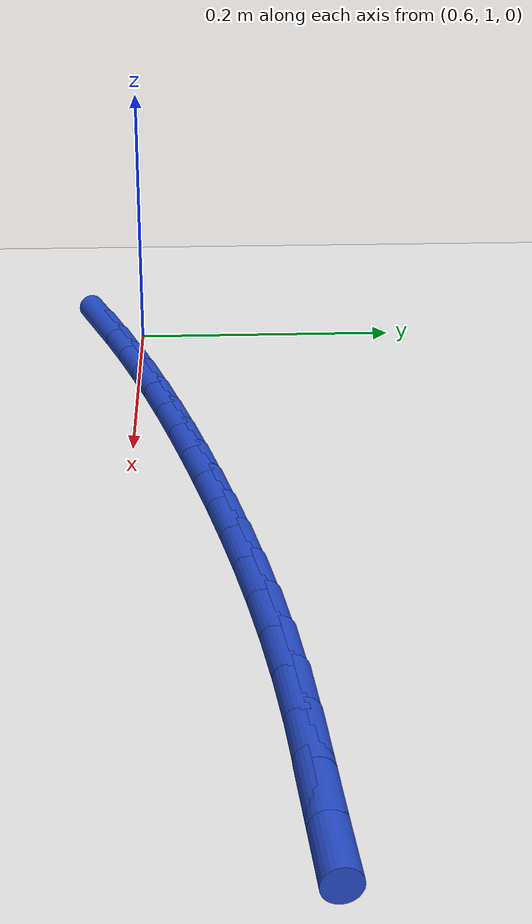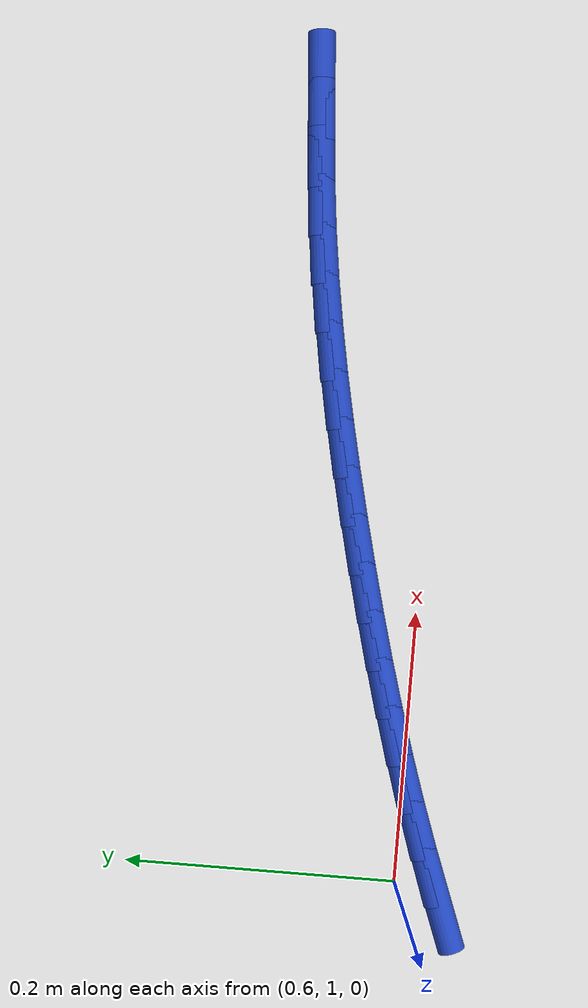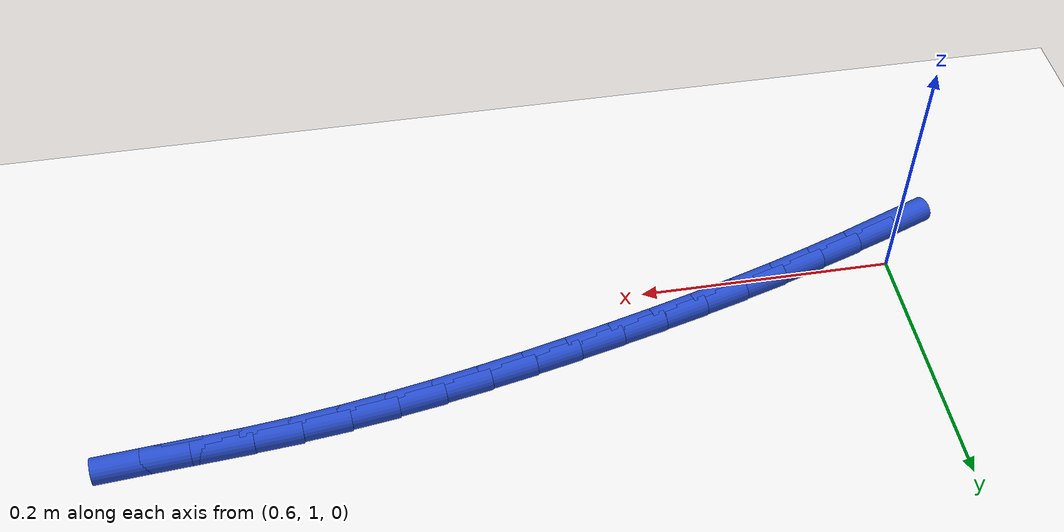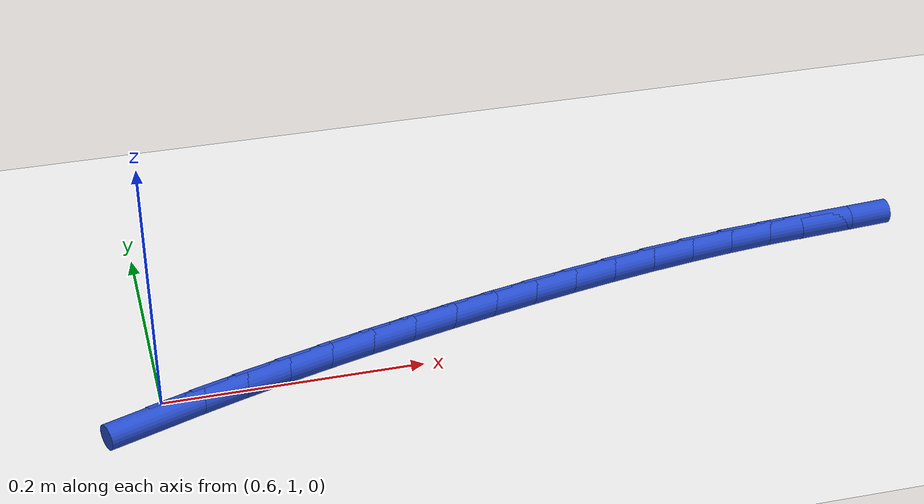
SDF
<sdf version="1.6">
 <world name="default">
  <model name="ground_plane">
   <static>1</static>
   <link name="link">
    <collision name="collision">
     <geometry><plane><normal>0 0 1</normal><size>100 100</size></plane></geometry>
     <surface><friction><ode><mu>100</mu><mu2>50</mu2></ode></friction></surface>
    </collision>
    <visual name="visual">
     <cast_shadows>0</cast_shadows>
     <geometry><plane><normal>0 0 1</normal><size>100 100</size></plane></geometry>
     <material>
      <script><uri>file://media/materials/scripts/gazebo.material</uri><name>Gazebo/WhiteGlow</name></script>
     </material>
    </visual>
   </link>
  </model>
  <model name="line">
   <link name="link_34">
    <pose>0.5934188185372113 0.9690207381355841 0.01 0 1.57 0.35867715312286735</pose>
    <collision name="collision">
     <geometry><cylinder><radius>0.01</radius><length>0.08</length></cylinder></geometry>
    </collision>
    <visual name="visual">
     <material>
      <script><name>Gazebo/Blue</name><uri>file://media/materials/scripts/gazebo.material</uri></script>
     </material>
     <geometry><cylinder><radius>0.01</radius><length>0.08</length></cylinder></geometry>
    </visual>
   </link>
   <link name="link_35">
    <pose>0.6268365475781638 0.9815488220487255 0.01 0 1.57 0.33769945399846885</pose>
    <collision name="collision">
     <geometry><cylinder><radius>0.01</radius><length>0.08</length></cylinder></geometry>
    </collision>
    <visual name="visual">
     <material>
      <script><name>Gazebo/Blue</name><uri>file://media/materials/scripts/gazebo.material</uri></script>
     </material>
     <geometry><cylinder><radius>0.01</radius><length>0.08</length></cylinder></geometry>
    </visual>
   </link>
   <link name="link_36">
    <pose>0.6604122335720984 0.9933389431682658 0.01 0 1.57 0.3181386986248441</pose>
    <collision name="collision">
     <geometry><cylinder><radius>0.01</radius><length>0.08</length></cylinder></geometry>
    </collision>
    <visual name="visual">
     <material>
      <script><name>Gazebo/Blue</name><uri>file://media/materials/scripts/gazebo.material</uri></script>
     </material>
     <geometry><cylinder><radius>0.01</radius><length>0.08</length></cylinder></geometry>
    </visual>
   </link>
   <link name="link_37">
    <pose>0.6941486769436354 1.0044491963256963 0.01 0 1.57 0.3000533269703848</pose>
    <collision name="collision">
     <geometry><cylinder><radius>0.01</radius><length>0.08</length></cylinder></geometry>
    </collision>
    <visual name="visual">
     <material>
      <script><name>Gazebo/Blue</name><uri>file://media/materials/scripts/gazebo.material</uri></script>
     </material>
     <geometry><cylinder><radius>0.01</radius><length>0.08</length></cylinder></geometry>
    </visual>
   </link>
   <link name="link_38">
    <pose>0.7280486781173943 1.0149376763525089 0.01 0 1.57 0.2834905531490338</pose>
    <collision name="collision">
     <geometry><cylinder><radius>0.01</radius><length>0.08</length></cylinder></geometry>
    </collision>
    <visual name="visual">
     <material>
      <script><name>Gazebo/Blue</name><uri>file://media/materials/scripts/gazebo.material</uri></script>
     </material>
     <geometry><cylinder><radius>0.01</radius><length>0.08</length></cylinder></geometry>
    </visual>
   </link>
   <link name="link_39">
    <pose>0.7621150375179948 1.0248624780801956 0.01 0 1.57 0.26848707169760744</pose>
    <collision name="collision">
     <geometry><cylinder><radius>0.01</radius><length>0.08</length></cylinder></geometry>
    </collision>
    <visual name="visual">
     <material>
      <script><name>Gazebo/Blue</name><uri>file://media/materials/scripts/gazebo.material</uri></script>
     </material>
     <geometry><cylinder><radius>0.01</radius><length>0.08</length></cylinder></geometry>
    </visual>
   </link>
   <link name="link_40">
    <pose>0.7963505555700576 1.034281696340249 0.01 0 1.57 0.2550698951712809</pose>
    <collision name="collision">
     <geometry><cylinder><radius>0.01</radius><length>0.08</length></cylinder></geometry>
    </collision>
    <visual name="visual">
     <material>
      <script><name>Gazebo/Blue</name><uri>file://media/materials/scripts/gazebo.material</uri></script>
     </material>
     <geometry><cylinder><radius>0.01</radius><length>0.08</length></cylinder></geometry>
    </visual>
   </link>
   <link name="link_41">
    <pose>0.8307580326982019 1.0432534259641604 0.01 0 1.57 0.2432552574607341</pose>
    <collision name="collision">
     <geometry><cylinder><radius>0.01</radius><length>0.08</length></cylinder></geometry>
    </collision>
    <visual name="visual">
     <material>
      <script><name>Gazebo/Blue</name><uri>file://media/materials/scripts/gazebo.material</uri></script>
     </material>
     <geometry><cylinder><radius>0.01</radius><length>0.08</length></cylinder></geometry>
    </visual>
   </link>
   <link name="link_42">
    <pose>0.8653402520343028 1.0518356838647942 0.01 0 1.57 0.23202307096497948</pose>
    <collision name="collision">
     <geometry><cylinder><radius>0.01</radius><length>0.08</length></cylinder></geometry>
    </collision>
    <visual name="visual">
     <material>
      <script><name>Gazebo/Blue</name><uri>file://media/materials/scripts/gazebo.material</uri></script>
     </material>
     <geometry><cylinder><radius>0.01</radius><length>0.08</length></cylinder></geometry>
    </visual>
   </link>
   <link name="link_43">
    <pose>0.9000911368951012 1.060046565899707 0.01 0 1.57 0.2186507471971308</pose>
    <collision name="collision">
     <geometry><cylinder><radius>0.01</radius><length>0.08</length></cylinder></geometry>
    </collision>
    <visual name="visual">
     <material>
      <script><name>Gazebo/Blue</name><uri>file://media/materials/scripts/gazebo.material</uri></script>
     </material>
     <geometry><cylinder><radius>0.01</radius><length>0.08</length></cylinder></geometry>
    </visual>
   </link>
   <link name="link_44">
    <pose>0.9349813316201964 1.0677992761967794 0.01 0 1.57 0.20265007443832417</pose>
    <collision name="collision">
     <geometry><cylinder><radius>0.01</radius><length>0.08</length></cylinder></geometry>
    </collision>
    <visual name="visual">
     <material>
      <script><name>Gazebo/Blue</name><uri>file://media/materials/scripts/gazebo.material</uri></script>
     </material>
     <geometry><cylinder><radius>0.01</radius><length>0.08</length></cylinder></geometry>
    </visual>
   </link>
   <link name="link_45">
    <pose>0.9699777030324707 1.0749899979357715 0.01 0 1.57 0.18395376565996616</pose>
    <collision name="collision">
     <geometry><cylinder><radius>0.01</radius><length>0.08</length></cylinder></geometry>
    </collision>
    <visual name="visual">
     <material>
      <script><name>Gazebo/Blue</name><uri>file://media/materials/scripts/gazebo.material</uri></script>
     </material>
     <geometry><cylinder><radius>0.01</radius><length>0.08</length></cylinder></geometry>
    </visual>
   </link>
   <link name="link_46">
    <pose>1.0050471179548073 1.0815149142964438 0.01 0 1.57 0.16247987473973194</pose>
    <collision name="collision">
     <geometry><cylinder><radius>0.01</radius><length>0.08</length></cylinder></geometry>
    </collision>
    <visual name="visual">
     <material>
      <script><name>Gazebo/Blue</name><uri>file://media/materials/scripts/gazebo.material</uri></script>
     </material>
     <geometry><cylinder><radius>0.01</radius><length>0.08</length></cylinder></geometry>
    </visual>
   </link>
   <link name="link_47">
    <pose>1.0401564432100892 1.0872702084585555 0.01 0 1.57 0.13813505867766</pose>
    <collision name="collision">
     <geometry><cylinder><radius>0.01</radius><length>0.08</length></cylinder></geometry>
    </collision>
    <visual name="visual">
     <material>
      <script><name>Gazebo/Blue</name><uri>file://media/materials/scripts/gazebo.material</uri></script>
     </material>
     <geometry><cylinder><radius>0.01</radius><length>0.08</length></cylinder></geometry>
    </visual>
   </link>
   <link name="link_48">
    <pose>1.075272545621199 1.0921520636018667 0.01 0 1.57 0.11081909394043994</pose>
    <collision name="collision">
     <geometry><cylinder><radius>0.01</radius><length>0.08</length></cylinder></geometry>
    </collision>
    <visual name="visual">
     <material>
      <script><name>Gazebo/Blue</name><uri>file://media/materials/scripts/gazebo.material</uri></script>
     </material>
     <geometry><cylinder><radius>0.01</radius><length>0.08</length></cylinder></geometry>
    </visual>
   </link>
   <link name="link_49">
    <pose>1.1103622927940897 1.096056674701157 0.01 0 1.57 0.08438259437875097</pose>
    <collision name="collision">
     <geometry><cylinder><radius>0.01</radius><length>0.08</length></cylinder></geometry>
    </collision>
    <visual name="visual">
     <material>
      <script><name>Gazebo/Blue</name><uri>file://media/materials/scripts/gazebo.material</uri></script>
     </material>
     <geometry><cylinder><radius>0.01</radius><length>0.08</length></cylinder></geometry>
    </visual>
   </link>
   <link name="link_50">
    <pose>1.1454018605543699 1.0990204421012482 0.01 0 1.57 0.07268358910765241</pose>
    <collision name="collision">
     <geometry><cylinder><radius>0.01</radius><length>0.08</length></cylinder></geometry>
    </collision>
    <visual name="visual">
     <material>
      <script><name>Gazebo/Blue</name><uri>file://media/materials/scripts/gazebo.material</uri></script>
     </material>
     <geometry><cylinder><radius>0.01</radius><length>0.08</length></cylinder></geometry>
    </visual>
   </link>
   <link name="link_51">
    <pose>1.1803998858705436 1.1015687131981093 0.01 0 1.57 0.07888852824627425</pose>
    <collision name="collision">
     <geometry><cylinder><radius>0.01</radius><length>0.08</length></cylinder></geometry>
    </collision>
    <visual name="visual">
     <material>
      <script><name>Gazebo/Blue</name><uri>file://media/materials/scripts/gazebo.material</uri></script>
     </material>
     <geometry><cylinder><radius>0.01</radius><length>0.08</length></cylinder></geometry>
    </visual>
   </link>
  </model>
 </world>
</sdf>
